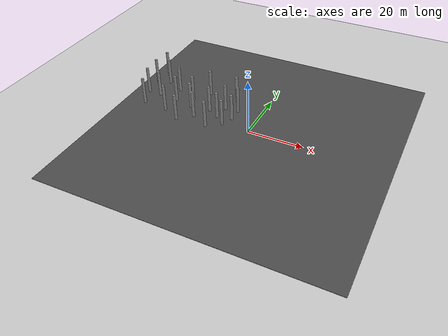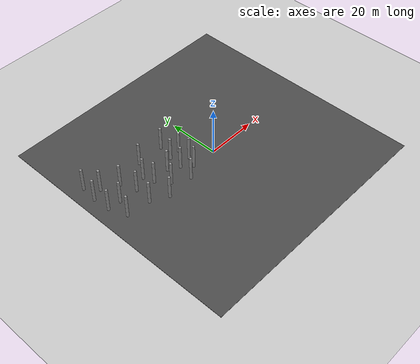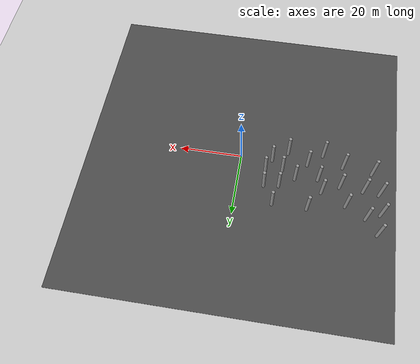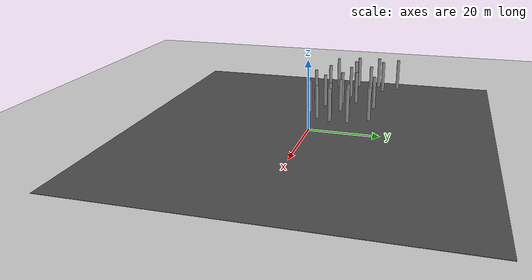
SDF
<sdf version="1.6">
 <world name="default">
  <model name="ground_plane">
   <static>1</static>
   <link name="link">
    <collision name="collision">
     <geometry><plane><normal>0 0 1</normal><size>100 100</size></plane></geometry>
     <surface><friction><ode><mu>100</mu><mu2>50</mu2></ode></friction></surface>
    </collision>
    <visual name="visual">
     <cast_shadows>0</cast_shadows>
     <geometry><plane><normal>0 0 1</normal><size>100 100</size></plane></geometry>
     <material>
      <script><uri>file://media/materials/scripts/gazebo.material</uri><name>Gazebo/Grey</name></script>
     </material>
    </visual>
   </link>
  </model>
  <model name="asphalt_plane">
   <static>1</static>
   <link name="link">
    <collision name="collision"><geometry><box><size>100 100 0.1</size></box></geometry></collision>
    <visual name="visual">
     <cast_shadows>0</cast_shadows>
     <geometry><box><size>100 100 0.1</size></box></geometry>
     <material>
      <script>
       <uri>model://asphalt_plane/materials/scripts</uri>
       <uri>model://asphalt_plane/materials/textures</uri>
       <name>vrc/asphalt</name>
      </script>
     </material>
    </visual>
   </link>
   <pose>0.078502 0.417861 0 0 -0 0</pose>
  </model>
  <model name="forest">
   <link name="link_clone_12">
    <pose>-8.00475 10.3672 0 0 -0 0</pose>
    <inertial>
     <mass>1000</mass>
     <inertia><ixx>0.145833</ixx><ixy>0</ixy><ixz>0</ixz><iyy>0.145833</iyy><iyz>0</iyz><izz>0.125</izz></inertia>
     <pose>0 0 5 0 -0 0</pose>
    </inertial>
    <visual name="visual">
     <geometry><cylinder><radius>0.5</radius><length>10</length></cylinder></geometry>
     <material>
      <script><name>Gazebo/Grey</name><uri>file://media/materials/scripts/gazebo.material</uri></script>
      <ambient>0.3 0.3 0.3 1</ambient>
      <diffuse>0.7 0.7 0.7 1</diffuse>
      <specular>0.01 0.01 0.01 1</specular>
      <emissive>0 0 0 1</emissive>
      <shader type="vertex"><normal_map>__default__</normal_map></shader>
     </material>
     <pose>0 0 5 0 -0 0</pose>
    </visual>
    <collision name="collision">
     <pose>0 0 5 0 -0 0</pose>
     <geometry><cylinder><radius>0.5</radius><length>10</length></cylinder></geometry>
     <surface>
      <friction>
       <ode><mu>1</mu><mu2>1</mu2><fdir1>0 0 0</fdir1><slip1>0</slip1><slip2>0</slip2></ode>
       <torsional>
        <coefficient>1</coefficient>
        <patch_radius>0</patch_radius>
        <surface_radius>0</surface_radius>
        <use_patch_radius>1</use_patch_radius>
        <ode><slip>0</slip></ode>
       </torsional>
      </friction>
      <bounce><restitution_coefficient>0</restitution_coefficient><threshold>1e+06</threshold></bounce>
      <contact>
       <collide_without_contact>0</collide_without_contact>
       <collide_without_contact_bitmask>1</collide_without_contact_bitmask>
       <collide_bitmask>1</collide_bitmask>
       <ode>
        <soft_cfm>0</soft_cfm>
        <soft_erp>0.2</soft_erp>
        <kp>1e+13</kp>
        <kd>1</kd>
        <max_vel>0.01</max_vel>
        <min_depth>0</min_depth>
       </ode>
       <bullet>
        <split_impulse>1</split_impulse>
        <split_impulse_penetration_threshold>-0.01</split_impulse_penetration_threshold>
        <soft_cfm>0</soft_cfm>
        <soft_erp>0.2</soft_erp>
        <kp>1e+13</kp>
        <kd>1</kd>
       </bullet>
      </contact>
     </surface>
    </collision>
   </link>
   <link name="link_clone_13_clone_1">
    <pose>-11.3149 16.1921 0 0 -0 0</pose>
    <inertial>
     <mass>1000</mass>
     <inertia><ixx>0.145833</ixx><ixy>0</ixy><ixz>0</ixz><iyy>0.145833</iyy><iyz>0</iyz><izz>0.125</izz></inertia>
     <pose>0 0 5 0 -0 0</pose>
    </inertial>
    <visual name="visual">
     <geometry><cylinder><radius>0.5</radius><length>10</length></cylinder></geometry>
     <material>
      <script><name>Gazebo/Grey</name><uri>file://media/materials/scripts/gazebo.material</uri></script>
      <ambient>0.3 0.3 0.3 1</ambient>
      <diffuse>0.7 0.7 0.7 1</diffuse>
      <specular>0.01 0.01 0.01 1</specular>
      <emissive>0 0 0 1</emissive>
      <shader type="vertex"><normal_map>__default__</normal_map></shader>
     </material>
     <pose>0 0 5 0 -0 0</pose>
    </visual>
    <collision name="collision">
     <pose>0 0 5 0 -0 0</pose>
     <geometry><cylinder><radius>0.5</radius><length>10</length></cylinder></geometry>
     <surface>
      <friction>
       <ode><mu>1</mu><mu2>1</mu2><fdir1>0 0 0</fdir1><slip1>0</slip1><slip2>0</slip2></ode>
       <torsional>
        <coefficient>1</coefficient>
        <patch_radius>0</patch_radius>
        <surface_radius>0</surface_radius>
        <use_patch_radius>1</use_patch_radius>
        <ode><slip>0</slip></ode>
       </torsional>
      </friction>
      <bounce><restitution_coefficient>0</restitution_coefficient><threshold>1e+06</threshold></bounce>
      <contact>
       <collide_without_contact>0</collide_without_contact>
       <collide_without_contact_bitmask>1</collide_without_contact_bitmask>
       <collide_bitmask>1</collide_bitmask>
       <ode>
        <soft_cfm>0</soft_cfm>
        <soft_erp>0.2</soft_erp>
        <kp>1e+13</kp>
        <kd>1</kd>
        <max_vel>0.01</max_vel>
        <min_depth>0</min_depth>
       </ode>
       <bullet>
        <split_impulse>1</split_impulse>
        <split_impulse_penetration_threshold>-0.01</split_impulse_penetration_threshold>
        <soft_cfm>0</soft_cfm>
        <soft_erp>0.2</soft_erp>
        <kp>1e+13</kp>
        <kd>1</kd>
       </bullet>
      </contact>
     </surface>
    </collision>
   </link>
   <link name="link_clone_13_clone_13">
    <pose>-22.1309 16.18 0 0 -0 0</pose>
    <inertial>
     <mass>1000</mass>
     <inertia><ixx>0.145833</ixx><ixy>0</ixy><ixz>0</ixz><iyy>0.145833</iyy><iyz>0</iyz><izz>0.125</izz></inertia>
     <pose>0 0 5 0 -0 0</pose>
    </inertial>
    <visual name="visual">
     <geometry><cylinder><radius>0.5</radius><length>10</length></cylinder></geometry>
     <material>
      <script><name>Gazebo/Grey</name><uri>file://media/materials/scripts/gazebo.material</uri></script>
      <ambient>0.3 0.3 0.3 1</ambient>
      <diffuse>0.7 0.7 0.7 1</diffuse>
      <specular>0.01 0.01 0.01 1</specular>
      <emissive>0 0 0 1</emissive>
      <shader type="vertex"><normal_map>__default__</normal_map></shader>
     </material>
     <pose>0 0 5 0 -0 0</pose>
    </visual>
    <collision name="collision">
     <pose>0 0 5 0 -0 0</pose>
     <geometry><cylinder><radius>0.5</radius><length>10</length></cylinder></geometry>
     <surface>
      <friction>
       <ode><mu>1</mu><mu2>1</mu2><fdir1>0 0 0</fdir1><slip1>0</slip1><slip2>0</slip2></ode>
       <torsional>
        <coefficient>1</coefficient>
        <patch_radius>0</patch_radius>
        <surface_radius>0</surface_radius>
        <use_patch_radius>1</use_patch_radius>
        <ode><slip>0</slip></ode>
       </torsional>
      </friction>
      <bounce><restitution_coefficient>0</restitution_coefficient><threshold>1e+06</threshold></bounce>
      <contact>
       <collide_without_contact>0</collide_without_contact>
       <collide_without_contact_bitmask>1</collide_without_contact_bitmask>
       <collide_bitmask>1</collide_bitmask>
       <ode>
        <soft_cfm>0</soft_cfm>
        <soft_erp>0.2</soft_erp>
        <kp>1e+13</kp>
        <kd>1</kd>
        <max_vel>0.01</max_vel>
        <min_depth>0</min_depth>
       </ode>
       <bullet>
        <split_impulse>1</split_impulse>
        <split_impulse_penetration_threshold>-0.01</split_impulse_penetration_threshold>
        <soft_cfm>0</soft_cfm>
        <soft_erp>0.2</soft_erp>
        <kp>1e+13</kp>
        <kd>1</kd>
       </bullet>
      </contact>
     </surface>
    </collision>
   </link>
   <link name="link_clone_13_clone_14">
    <pose>-26.1252 10.0023 0 0 -0 0</pose>
    <inertial>
     <mass>1000</mass>
     <inertia><ixx>0.145833</ixx><ixy>0</ixy><ixz>0</ixz><iyy>0.145833</iyy><iyz>0</iyz><izz>0.125</izz></inertia>
     <pose>0 0 5 0 -0 0</pose>
    </inertial>
    <visual name="visual">
     <geometry><cylinder><radius>0.5</radius><length>10</length></cylinder></geometry>
     <material>
      <script><name>Gazebo/Grey</name><uri>file://media/materials/scripts/gazebo.material</uri></script>
      <ambient>0.3 0.3 0.3 1</ambient>
      <diffuse>0.7 0.7 0.7 1</diffuse>
      <specular>0.01 0.01 0.01 1</specular>
      <emissive>0 0 0 1</emissive>
      <shader type="vertex"><normal_map>__default__</normal_map></shader>
     </material>
     <pose>0 0 5 0 -0 0</pose>
    </visual>
    <collision name="collision">
     <pose>0 0 5 0 -0 0</pose>
     <geometry><cylinder><radius>0.5</radius><length>10</length></cylinder></geometry>
     <surface>
      <friction>
       <ode><mu>1</mu><mu2>1</mu2><fdir1>0 0 0</fdir1><slip1>0</slip1><slip2>0</slip2></ode>
       <torsional>
        <coefficient>1</coefficient>
        <patch_radius>0</patch_radius>
        <surface_radius>0</surface_radius>
        <use_patch_radius>1</use_patch_radius>
        <ode><slip>0</slip></ode>
       </torsional>
      </friction>
      <bounce><restitution_coefficient>0</restitution_coefficient><threshold>1e+06</threshold></bounce>
      <contact>
       <collide_without_contact>0</collide_without_contact>
       <collide_without_contact_bitmask>1</collide_without_contact_bitmask>
       <collide_bitmask>1</collide_bitmask>
       <ode>
        <soft_cfm>0</soft_cfm>
        <soft_erp>0.2</soft_erp>
        <kp>1e+13</kp>
        <kd>1</kd>
        <max_vel>0.01</max_vel>
        <min_depth>0</min_depth>
       </ode>
       <bullet>
        <split_impulse>1</split_impulse>
        <split_impulse_penetration_threshold>-0.01</split_impulse_penetration_threshold>
        <soft_cfm>0</soft_cfm>
        <soft_erp>0.2</soft_erp>
        <kp>1e+13</kp>
        <kd>1</kd>
       </bullet>
      </contact>
     </surface>
    </collision>
   </link>
   <link name="link_clone_13_clone_15">
    <pose>-24.7315 5.80433 0 0 -0 0</pose>
    <inertial>
     <mass>1000</mass>
     <inertia><ixx>0.145833</ixx><ixy>0</ixy><ixz>0</ixz><iyy>0.145833</iyy><iyz>0</iyz><izz>0.125</izz></inertia>
     <pose>0 0 5 0 -0 0</pose>
    </inertial>
    <visual name="visual">
     <geometry><cylinder><radius>0.5</radius><length>10</length></cylinder></geometry>
     <material>
      <script><name>Gazebo/Grey</name><uri>file://media/materials/scripts/gazebo.material</uri></script>
      <ambient>0.3 0.3 0.3 1</ambient>
      <diffuse>0.7 0.7 0.7 1</diffuse>
      <specular>0.01 0.01 0.01 1</specular>
      <emissive>0 0 0 1</emissive>
      <shader type="vertex"><normal_map>__default__</normal_map></shader>
     </material>
     <pose>0 0 5 0 -0 0</pose>
    </visual>
    <collision name="collision">
     <pose>0 0 5 0 -0 0</pose>
     <geometry><cylinder><radius>0.5</radius><length>10</length></cylinder></geometry>
     <surface>
      <friction>
       <ode><mu>1</mu><mu2>1</mu2><fdir1>0 0 0</fdir1><slip1>0</slip1><slip2>0</slip2></ode>
       <torsional>
        <coefficient>1</coefficient>
        <patch_radius>0</patch_radius>
        <surface_radius>0</surface_radius>
        <use_patch_radius>1</use_patch_radius>
        <ode><slip>0</slip></ode>
       </torsional>
      </friction>
      <bounce><restitution_coefficient>0</restitution_coefficient><threshold>1e+06</threshold></bounce>
      <contact>
       <collide_without_contact>0</collide_without_contact>
       <collide_without_contact_bitmask>1</collide_without_contact_bitmask>
       <collide_bitmask>1</collide_bitmask>
       <ode>
        <soft_cfm>0</soft_cfm>
        <soft_erp>0.2</soft_erp>
        <kp>1e+13</kp>
        <kd>1</kd>
        <max_vel>0.01</max_vel>
        <min_depth>0</min_depth>
       </ode>
       <bullet>
        <split_impulse>1</split_impulse>
        <split_impulse_penetration_threshold>-0.01</split_impulse_penetration_threshold>
        <soft_cfm>0</soft_cfm>
        <soft_erp>0.2</soft_erp>
        <kp>1e+13</kp>
        <kd>1</kd>
       </bullet>
      </contact>
     </surface>
    </collision>
   </link>
   <link name="link_clone_13_clone_16">
    <pose>-25.7222 -2.93732 0 0 -0 0</pose>
    <inertial>
     <mass>1000</mass>
     <inertia><ixx>0.145833</ixx><ixy>0</ixy><ixz>0</ixz><iyy>0.145833</iyy><iyz>0</iyz><izz>0.125</izz></inertia>
     <pose>0 0 5 0 -0 0</pose>
    </inertial>
    <visual name="visual">
     <geometry><cylinder><radius>0.5</radius><length>10</length></cylinder></geometry>
     <material>
      <script><name>Gazebo/Grey</name><uri>file://media/materials/scripts/gazebo.material</uri></script>
      <ambient>0.3 0.3 0.3 1</ambient>
      <diffuse>0.7 0.7 0.7 1</diffuse>
      <specular>0.01 0.01 0.01 1</specular>
      <emissive>0 0 0 1</emissive>
      <shader type="vertex"><normal_map>__default__</normal_map></shader>
     </material>
     <pose>0 0 5 0 -0 0</pose>
    </visual>
    <collision name="collision">
     <pose>0 0 5 0 -0 0</pose>
     <geometry><cylinder><radius>0.5</radius><length>10</length></cylinder></geometry>
     <surface>
      <friction>
       <ode><mu>1</mu><mu2>1</mu2><fdir1>0 0 0</fdir1><slip1>0</slip1><slip2>0</slip2></ode>
       <torsional>
        <coefficient>1</coefficient>
        <patch_radius>0</patch_radius>
        <surface_radius>0</surface_radius>
        <use_patch_radius>1</use_patch_radius>
        <ode><slip>0</slip></ode>
       </torsional>
      </friction>
      <bounce><restitution_coefficient>0</restitution_coefficient><threshold>1e+06</threshold></bounce>
      <contact>
       <collide_without_contact>0</collide_without_contact>
       <collide_without_contact_bitmask>1</collide_without_contact_bitmask>
       <collide_bitmask>1</collide_bitmask>
       <ode>
        <soft_cfm>0</soft_cfm>
        <soft_erp>0.2</soft_erp>
        <kp>1e+13</kp>
        <kd>1</kd>
        <max_vel>0.01</max_vel>
        <min_depth>0</min_depth>
       </ode>
       <bullet>
        <split_impulse>1</split_impulse>
        <split_impulse_penetration_threshold>-0.01</split_impulse_penetration_threshold>
        <soft_cfm>0</soft_cfm>
        <soft_erp>0.2</soft_erp>
        <kp>1e+13</kp>
        <kd>1</kd>
       </bullet>
      </contact>
     </surface>
    </collision>
   </link>
   <link name="link_clone_13_clone_29">
    <pose>-20.9755 1.09889 0 0 -0 0</pose>
    <inertial>
     <mass>1000</mass>
     <inertia><ixx>0.145833</ixx><ixy>0</ixy><ixz>0</ixz><iyy>0.145833</iyy><iyz>0</iyz><izz>0.125</izz></inertia>
     <pose>0 0 5 0 -0 0</pose>
    </inertial>
    <visual name="visual">
     <geometry><cylinder><radius>0.5</radius><length>10</length></cylinder></geometry>
     <material>
      <script><name>Gazebo/Grey</name><uri>file://media/materials/scripts/gazebo.material</uri></script>
      <ambient>0.3 0.3 0.3 1</ambient>
      <diffuse>0.7 0.7 0.7 1</diffuse>
      <specular>0.01 0.01 0.01 1</specular>
      <emissive>0 0 0 1</emissive>
      <shader type="vertex"><normal_map>__default__</normal_map></shader>
     </material>
     <pose>0 0 5 0 -0 0</pose>
    </visual>
    <collision name="collision">
     <pose>0 0 5 0 -0 0</pose>
     <geometry><cylinder><radius>0.5</radius><length>10</length></cylinder></geometry>
     <surface>
      <friction>
       <ode><mu>1</mu><mu2>1</mu2><fdir1>0 0 0</fdir1><slip1>0</slip1><slip2>0</slip2></ode>
       <torsional>
        <coefficient>1</coefficient>
        <patch_radius>0</patch_radius>
        <surface_radius>0</surface_radius>
        <use_patch_radius>1</use_patch_radius>
        <ode><slip>0</slip></ode>
       </torsional>
      </friction>
      <bounce><restitution_coefficient>0</restitution_coefficient><threshold>1e+06</threshold></bounce>
      <contact>
       <collide_without_contact>0</collide_without_contact>
       <collide_without_contact_bitmask>1</collide_without_contact_bitmask>
       <collide_bitmask>1</collide_bitmask>
       <ode>
        <soft_cfm>0</soft_cfm>
        <soft_erp>0.2</soft_erp>
        <kp>1e+13</kp>
        <kd>1</kd>
        <max_vel>0.01</max_vel>
        <min_depth>0</min_depth>
       </ode>
       <bullet>
        <split_impulse>1</split_impulse>
        <split_impulse_penetration_threshold>-0.01</split_impulse_penetration_threshold>
        <soft_cfm>0</soft_cfm>
        <soft_erp>0.2</soft_erp>
        <kp>1e+13</kp>
        <kd>1</kd>
       </bullet>
      </contact>
     </surface>
    </collision>
   </link>
   <link name="link_clone_13_clone_4">
    <pose>-17.4766 6.59228 0 0 -0 0</pose>
    <inertial>
     <mass>1000</mass>
     <inertia><ixx>0.145833</ixx><ixy>0</ixy><ixz>0</ixz><iyy>0.145833</iyy><iyz>0</iyz><izz>0.125</izz></inertia>
     <pose>0 0 5 0 -0 0</pose>
    </inertial>
    <visual name="visual">
     <geometry><cylinder><radius>0.5</radius><length>10</length></cylinder></geometry>
     <material>
      <script><name>Gazebo/Grey</name><uri>file://media/materials/scripts/gazebo.material</uri></script>
      <ambient>0.3 0.3 0.3 1</ambient>
      <diffuse>0.7 0.7 0.7 1</diffuse>
      <specular>0.01 0.01 0.01 1</specular>
      <emissive>0 0 0 1</emissive>
      <shader type="vertex"><normal_map>__default__</normal_map></shader>
     </material>
     <pose>0 0 5 0 -0 0</pose>
    </visual>
    <collision name="collision">
     <pose>0 0 5 0 -0 0</pose>
     <geometry><cylinder><radius>0.5</radius><length>10</length></cylinder></geometry>
     <surface>
      <friction>
       <ode><mu>1</mu><mu2>1</mu2><fdir1>0 0 0</fdir1><slip1>0</slip1><slip2>0</slip2></ode>
       <torsional>
        <coefficient>1</coefficient>
        <patch_radius>0</patch_radius>
        <surface_radius>0</surface_radius>
        <use_patch_radius>1</use_patch_radius>
        <ode><slip>0</slip></ode>
       </torsional>
      </friction>
      <bounce><restitution_coefficient>0</restitution_coefficient><threshold>1e+06</threshold></bounce>
      <contact>
       <collide_without_contact>0</collide_without_contact>
       <collide_without_contact_bitmask>1</collide_without_contact_bitmask>
       <collide_bitmask>1</collide_bitmask>
       <ode>
        <soft_cfm>0</soft_cfm>
        <soft_erp>0.2</soft_erp>
        <kp>1e+13</kp>
        <kd>1</kd>
        <max_vel>0.01</max_vel>
        <min_depth>0</min_depth>
       </ode>
       <bullet>
        <split_impulse>1</split_impulse>
        <split_impulse_penetration_threshold>-0.01</split_impulse_penetration_threshold>
        <soft_cfm>0</soft_cfm>
        <soft_erp>0.2</soft_erp>
        <kp>1e+13</kp>
        <kd>1</kd>
       </bullet>
      </contact>
     </surface>
    </collision>
   </link>
   <link name="link_clone_13_clone_60">
    <pose>-43.8174 21.4004 0 0 -0 0</pose>
    <inertial>
     <mass>1000</mass>
     <inertia><ixx>0.145833</ixx><ixy>0</ixy><ixz>0</ixz><iyy>0.145833</iyy><iyz>0</iyz><izz>0.125</izz></inertia>
     <pose>0 0 5 0 -0 0</pose>
    </inertial>
    <visual name="visual">
     <geometry><cylinder><radius>0.5</radius><length>10</length></cylinder></geometry>
     <material>
      <script><name>Gazebo/Grey</name><uri>file://media/materials/scripts/gazebo.material</uri></script>
      <ambient>0.3 0.3 0.3 1</ambient>
      <diffuse>0.7 0.7 0.7 1</diffuse>
      <specular>0.01 0.01 0.01 1</specular>
      <emissive>0 0 0 1</emissive>
      <shader type="vertex"><normal_map>__default__</normal_map></shader>
     </material>
     <pose>0 0 5 0 -0 0</pose>
    </visual>
    <collision name="collision">
     <pose>0 0 5 0 -0 0</pose>
     <geometry><cylinder><radius>0.5</radius><length>10</length></cylinder></geometry>
     <surface>
      <friction>
       <ode><mu>1</mu><mu2>1</mu2><fdir1>0 0 0</fdir1><slip1>0</slip1><slip2>0</slip2></ode>
       <torsional>
        <coefficient>1</coefficient>
        <patch_radius>0</patch_radius>
        <surface_radius>0</surface_radius>
        <use_patch_radius>1</use_patch_radius>
        <ode><slip>0</slip></ode>
       </torsional>
      </friction>
      <bounce><restitution_coefficient>0</restitution_coefficient><threshold>1e+06</threshold></bounce>
      <contact>
       <collide_without_contact>0</collide_without_contact>
       <collide_without_contact_bitmask>1</collide_without_contact_bitmask>
       <collide_bitmask>1</collide_bitmask>
       <ode>
        <soft_cfm>0</soft_cfm>
        <soft_erp>0.2</soft_erp>
        <kp>1e+13</kp>
        <kd>1</kd>
        <max_vel>0.01</max_vel>
        <min_depth>0</min_depth>
       </ode>
       <bullet>
        <split_impulse>1</split_impulse>
        <split_impulse_penetration_threshold>-0.01</split_impulse_penetration_threshold>
        <soft_cfm>0</soft_cfm>
        <soft_erp>0.2</soft_erp>
        <kp>1e+13</kp>
        <kd>1</kd>
       </bullet>
      </contact>
     </surface>
    </collision>
   </link>
   <link name="link_clone_13_clone_63">
    <pose>-33.8023 13.5572 0 0 -0 0</pose>
    <inertial>
     <mass>1000</mass>
     <inertia><ixx>0.145833</ixx><ixy>0</ixy><ixz>0</ixz><iyy>0.145833</iyy><iyz>0</iyz><izz>0.125</izz></inertia>
     <pose>0 0 5 0 -0 0</pose>
    </inertial>
    <visual name="visual">
     <geometry><cylinder><radius>0.5</radius><length>10</length></cylinder></geometry>
     <material>
      <script><name>Gazebo/Grey</name><uri>file://media/materials/scripts/gazebo.material</uri></script>
      <ambient>0.3 0.3 0.3 1</ambient>
      <diffuse>0.7 0.7 0.7 1</diffuse>
      <specular>0.01 0.01 0.01 1</specular>
      <emissive>0 0 0 1</emissive>
      <shader type="vertex"><normal_map>__default__</normal_map></shader>
     </material>
     <pose>0 0 5 0 -0 0</pose>
    </visual>
    <collision name="collision">
     <pose>0 0 5 0 -0 0</pose>
     <geometry><cylinder><radius>0.5</radius><length>10</length></cylinder></geometry>
     <surface>
      <friction>
       <ode><mu>1</mu><mu2>1</mu2><fdir1>0 0 0</fdir1><slip1>0</slip1><slip2>0</slip2></ode>
       <torsional>
        <coefficient>1</coefficient>
        <patch_radius>0</patch_radius>
        <surface_radius>0</surface_radius>
        <use_patch_radius>1</use_patch_radius>
        <ode><slip>0</slip></ode>
       </torsional>
      </friction>
      <bounce><restitution_coefficient>0</restitution_coefficient><threshold>1e+06</threshold></bounce>
      <contact>
       <collide_without_contact>0</collide_without_contact>
       <collide_without_contact_bitmask>1</collide_without_contact_bitmask>
       <collide_bitmask>1</collide_bitmask>
       <ode>
        <soft_cfm>0</soft_cfm>
        <soft_erp>0.2</soft_erp>
        <kp>1e+13</kp>
        <kd>1</kd>
        <max_vel>0.01</max_vel>
        <min_depth>0</min_depth>
       </ode>
       <bullet>
        <split_impulse>1</split_impulse>
        <split_impulse_penetration_threshold>-0.01</split_impulse_penetration_threshold>
        <soft_cfm>0</soft_cfm>
        <soft_erp>0.2</soft_erp>
        <kp>1e+13</kp>
        <kd>1</kd>
       </bullet>
      </contact>
     </surface>
    </collision>
   </link>
   <link name="link_clone_13_clone_64">
    <pose>-40.1258 16.7835 0 0 -0 0</pose>
    <inertial>
     <mass>1000</mass>
     <inertia><ixx>0.145833</ixx><ixy>0</ixy><ixz>0</ixz><iyy>0.145833</iyy><iyz>0</iyz><izz>0.125</izz></inertia>
     <pose>0 0 5 0 -0 0</pose>
    </inertial>
    <visual name="visual">
     <geometry><cylinder><radius>0.5</radius><length>10</length></cylinder></geometry>
     <material>
      <script><name>Gazebo/Grey</name><uri>file://media/materials/scripts/gazebo.material</uri></script>
      <ambient>0.3 0.3 0.3 1</ambient>
      <diffuse>0.7 0.7 0.7 1</diffuse>
      <specular>0.01 0.01 0.01 1</specular>
      <emissive>0 0 0 1</emissive>
      <shader type="vertex"><normal_map>__default__</normal_map></shader>
     </material>
     <pose>0 0 5 0 -0 0</pose>
    </visual>
    <collision name="collision">
     <pose>0 0 5 0 -0 0</pose>
     <geometry><cylinder><radius>0.5</radius><length>10</length></cylinder></geometry>
     <surface>
      <friction>
       <ode><mu>1</mu><mu2>1</mu2><fdir1>0 0 0</fdir1><slip1>0</slip1><slip2>0</slip2></ode>
       <torsional>
        <coefficient>1</coefficient>
        <patch_radius>0</patch_radius>
        <surface_radius>0</surface_radius>
        <use_patch_radius>1</use_patch_radius>
        <ode><slip>0</slip></ode>
       </torsional>
      </friction>
      <bounce><restitution_coefficient>0</restitution_coefficient><threshold>1e+06</threshold></bounce>
      <contact>
       <collide_without_contact>0</collide_without_contact>
       <collide_without_contact_bitmask>1</collide_without_contact_bitmask>
       <collide_bitmask>1</collide_bitmask>
       <ode>
        <soft_cfm>0</soft_cfm>
        <soft_erp>0.2</soft_erp>
        <kp>1e+13</kp>
        <kd>1</kd>
        <max_vel>0.01</max_vel>
        <min_depth>0</min_depth>
       </ode>
       <bullet>
        <split_impulse>1</split_impulse>
        <split_impulse_penetration_threshold>-0.01</split_impulse_penetration_threshold>
        <soft_cfm>0</soft_cfm>
        <soft_erp>0.2</soft_erp>
        <kp>1e+13</kp>
        <kd>1</kd>
       </bullet>
      </contact>
     </surface>
    </collision>
   </link>
   <link name="link_clone_13_clone_65">
    <pose>-44.5718 14.901 0 0 -0 0</pose>
    <inertial>
     <mass>1000</mass>
     <inertia><ixx>0.145833</ixx><ixy>0</ixy><ixz>0</ixz><iyy>0.145833</iyy><iyz>0</iyz><izz>0.125</izz></inertia>
     <pose>0 0 5 0 -0 0</pose>
    </inertial>
    <visual name="visual">
     <geometry><cylinder><radius>0.5</radius><length>10</length></cylinder></geometry>
     <material>
      <script><name>Gazebo/Grey</name><uri>file://media/materials/scripts/gazebo.material</uri></script>
      <ambient>0.3 0.3 0.3 1</ambient>
      <diffuse>0.7 0.7 0.7 1</diffuse>
      <specular>0.01 0.01 0.01 1</specular>
      <emissive>0 0 0 1</emissive>
      <shader type="vertex"><normal_map>__default__</normal_map></shader>
     </material>
     <pose>0 0 5 0 -0 0</pose>
    </visual>
    <collision name="collision">
     <pose>0 0 5 0 -0 0</pose>
     <geometry><cylinder><radius>0.5</radius><length>10</length></cylinder></geometry>
     <surface>
      <friction>
       <ode><mu>1</mu><mu2>1</mu2><fdir1>0 0 0</fdir1><slip1>0</slip1><slip2>0</slip2></ode>
       <torsional>
        <coefficient>1</coefficient>
        <patch_radius>0</patch_radius>
        <surface_radius>0</surface_radius>
        <use_patch_radius>1</use_patch_radius>
        <ode><slip>0</slip></ode>
       </torsional>
      </friction>
      <bounce><restitution_coefficient>0</restitution_coefficient><threshold>1e+06</threshold></bounce>
      <contact>
       <collide_without_contact>0</collide_without_contact>
       <collide_without_contact_bitmask>1</collide_without_contact_bitmask>
       <collide_bitmask>1</collide_bitmask>
       <ode>
        <soft_cfm>0</soft_cfm>
        <soft_erp>0.2</soft_erp>
        <kp>1e+13</kp>
        <kd>1</kd>
        <max_vel>0.01</max_vel>
        <min_depth>0</min_depth>
       </ode>
       <bullet>
        <split_impulse>1</split_impulse>
        <split_impulse_penetration_threshold>-0.01</split_impulse_penetration_threshold>
        <soft_cfm>0</soft_cfm>
        <soft_erp>0.2</soft_erp>
        <kp>1e+13</kp>
        <kd>1</kd>
       </bullet>
      </contact>
     </surface>
    </collision>
   </link>
   <link name="link_clone_13_clone_66">
    <pose>-44.0592 8.21099 0 0 -0 0</pose>
    <inertial>
     <mass>1000</mass>
     <inertia><ixx>0.145833</ixx><ixy>0</ixy><ixz>0</ixz><iyy>0.145833</iyy><iyz>0</iyz><izz>0.125</izz></inertia>
     <pose>0 0 5 0 -0 0</pose>
    </inertial>
    <visual name="visual">
     <geometry><cylinder><radius>0.5</radius><length>10</length></cylinder></geometry>
     <material>
      <script><name>Gazebo/Grey</name><uri>file://media/materials/scripts/gazebo.material</uri></script>
      <ambient>0.3 0.3 0.3 1</ambient>
      <diffuse>0.7 0.7 0.7 1</diffuse>
      <specular>0.01 0.01 0.01 1</specular>
      <emissive>0 0 0 1</emissive>
      <shader type="vertex"><normal_map>__default__</normal_map></shader>
     </material>
     <pose>0 0 5 0 -0 0</pose>
    </visual>
    <collision name="collision">
     <pose>0 0 5 0 -0 0</pose>
     <geometry><cylinder><radius>0.5</radius><length>10</length></cylinder></geometry>
     <surface>
      <friction>
       <ode><mu>1</mu><mu2>1</mu2><fdir1>0 0 0</fdir1><slip1>0</slip1><slip2>0</slip2></ode>
       <torsional>
        <coefficient>1</coefficient>
        <patch_radius>0</patch_radius>
        <surface_radius>0</surface_radius>
        <use_patch_radius>1</use_patch_radius>
        <ode><slip>0</slip></ode>
       </torsional>
      </friction>
      <bounce><restitution_coefficient>0</restitution_coefficient><threshold>1e+06</threshold></bounce>
      <contact>
       <collide_without_contact>0</collide_without_contact>
       <collide_without_contact_bitmask>1</collide_without_contact_bitmask>
       <collide_bitmask>1</collide_bitmask>
       <ode>
        <soft_cfm>0</soft_cfm>
        <soft_erp>0.2</soft_erp>
        <kp>1e+13</kp>
        <kd>1</kd>
        <max_vel>0.01</max_vel>
        <min_depth>0</min_depth>
       </ode>
       <bullet>
        <split_impulse>1</split_impulse>
        <split_impulse_penetration_threshold>-0.01</split_impulse_penetration_threshold>
        <soft_cfm>0</soft_cfm>
        <soft_erp>0.2</soft_erp>
        <kp>1e+13</kp>
        <kd>1</kd>
       </bullet>
      </contact>
     </surface>
    </collision>
   </link>
   <link name="link_clone_13_clone_67">
    <pose>-39.043 7.81464 0 0 -0 0</pose>
    <inertial>
     <mass>1000</mass>
     <inertia><ixx>0.145833</ixx><ixy>0</ixy><ixz>0</ixz><iyy>0.145833</iyy><iyz>0</iyz><izz>0.125</izz></inertia>
     <pose>0 0 5 0 -0 0</pose>
    </inertial>
    <visual name="visual">
     <geometry><cylinder><radius>0.5</radius><length>10</length></cylinder></geometry>
     <material>
      <script><name>Gazebo/Grey</name><uri>file://media/materials/scripts/gazebo.material</uri></script>
      <ambient>0.3 0.3 0.3 1</ambient>
      <diffuse>0.7 0.7 0.7 1</diffuse>
      <specular>0.01 0.01 0.01 1</specular>
      <emissive>0 0 0 1</emissive>
      <shader type="vertex"><normal_map>__default__</normal_map></shader>
     </material>
     <pose>0 0 5 0 -0 0</pose>
    </visual>
    <collision name="collision">
     <pose>0 0 5 0 -0 0</pose>
     <geometry><cylinder><radius>0.5</radius><length>10</length></cylinder></geometry>
     <surface>
      <friction>
       <ode><mu>1</mu><mu2>1</mu2><fdir1>0 0 0</fdir1><slip1>0</slip1><slip2>0</slip2></ode>
       <torsional>
        <coefficient>1</coefficient>
        <patch_radius>0</patch_radius>
        <surface_radius>0</surface_radius>
        <use_patch_radius>1</use_patch_radius>
        <ode><slip>0</slip></ode>
       </torsional>
      </friction>
      <bounce><restitution_coefficient>0</restitution_coefficient><threshold>1e+06</threshold></bounce>
      <contact>
       <collide_without_contact>0</collide_without_contact>
       <collide_without_contact_bitmask>1</collide_without_contact_bitmask>
       <collide_bitmask>1</collide_bitmask>
       <ode>
        <soft_cfm>0</soft_cfm>
        <soft_erp>0.2</soft_erp>
        <kp>1e+13</kp>
        <kd>1</kd>
        <max_vel>0.01</max_vel>
        <min_depth>0</min_depth>
       </ode>
       <bullet>
        <split_impulse>1</split_impulse>
        <split_impulse_penetration_threshold>-0.01</split_impulse_penetration_threshold>
        <soft_cfm>0</soft_cfm>
        <soft_erp>0.2</soft_erp>
        <kp>1e+13</kp>
        <kd>1</kd>
       </bullet>
      </contact>
     </surface>
    </collision>
   </link>
   <link name="link_clone_13_clone_68">
    <pose>-31.6867 7.38173 0 0 -0 0</pose>
    <inertial>
     <mass>1000</mass>
     <inertia><ixx>0.145833</ixx><ixy>0</ixy><ixz>0</ixz><iyy>0.145833</iyy><iyz>0</iyz><izz>0.125</izz></inertia>
     <pose>0 0 5 0 -0 0</pose>
    </inertial>
    <visual name="visual">
     <geometry><cylinder><radius>0.5</radius><length>10</length></cylinder></geometry>
     <material>
      <script><name>Gazebo/Grey</name><uri>file://media/materials/scripts/gazebo.material</uri></script>
      <ambient>0.3 0.3 0.3 1</ambient>
      <diffuse>0.7 0.7 0.7 1</diffuse>
      <specular>0.01 0.01 0.01 1</specular>
      <emissive>0 0 0 1</emissive>
      <shader type="vertex"><normal_map>__default__</normal_map></shader>
     </material>
     <pose>0 0 5 0 -0 0</pose>
    </visual>
    <collision name="collision">
     <pose>0 0 5 0 -0 0</pose>
     <geometry><cylinder><radius>0.5</radius><length>10</length></cylinder></geometry>
     <surface>
      <friction>
       <ode><mu>1</mu><mu2>1</mu2><fdir1>0 0 0</fdir1><slip1>0</slip1><slip2>0</slip2></ode>
       <torsional>
        <coefficient>1</coefficient>
        <patch_radius>0</patch_radius>
        <surface_radius>0</surface_radius>
        <use_patch_radius>1</use_patch_radius>
        <ode><slip>0</slip></ode>
       </torsional>
      </friction>
      <bounce><restitution_coefficient>0</restitution_coefficient><threshold>1e+06</threshold></bounce>
      <contact>
       <collide_without_contact>0</collide_without_contact>
       <collide_without_contact_bitmask>1</collide_without_contact_bitmask>
       <collide_bitmask>1</collide_bitmask>
       <ode>
        <soft_cfm>0</soft_cfm>
        <soft_erp>0.2</soft_erp>
        <kp>1e+13</kp>
        <kd>1</kd>
        <max_vel>0.01</max_vel>
        <min_depth>0</min_depth>
       </ode>
       <bullet>
        <split_impulse>1</split_impulse>
        <split_impulse_penetration_threshold>-0.01</split_impulse_penetration_threshold>
        <soft_cfm>0</soft_cfm>
        <soft_erp>0.2</soft_erp>
        <kp>1e+13</kp>
        <kd>1</kd>
       </bullet>
      </contact>
     </surface>
    </collision>
   </link>
   <link name="link_clone_13_clone_69">
    <pose>-41.5476 1.37971 0 0 -0 0</pose>
    <inertial>
     <mass>1000</mass>
     <inertia><ixx>0.145833</ixx><ixy>0</ixy><ixz>0</ixz><iyy>0.145833</iyy><iyz>0</iyz><izz>0.125</izz></inertia>
     <pose>0 0 5 0 -0 0</pose>
    </inertial>
    <visual name="visual">
     <geometry><cylinder><radius>0.5</radius><length>10</length></cylinder></geometry>
     <material>
      <script><name>Gazebo/Grey</name><uri>file://media/materials/scripts/gazebo.material</uri></script>
      <ambient>0.3 0.3 0.3 1</ambient>
      <diffuse>0.7 0.7 0.7 1</diffuse>
      <specular>0.01 0.01 0.01 1</specular>
      <emissive>0 0 0 1</emissive>
      <shader type="vertex"><normal_map>__default__</normal_map></shader>
     </material>
     <pose>0 0 5 0 -0 0</pose>
    </visual>
    <collision name="collision">
     <pose>0 0 5 0 -0 0</pose>
     <geometry><cylinder><radius>0.5</radius><length>10</length></cylinder></geometry>
     <surface>
      <friction>
       <ode><mu>1</mu><mu2>1</mu2><fdir1>0 0 0</fdir1><slip1>0</slip1><slip2>0</slip2></ode>
       <torsional>
        <coefficient>1</coefficient>
        <patch_radius>0</patch_radius>
        <surface_radius>0</surface_radius>
        <use_patch_radius>1</use_patch_radius>
        <ode><slip>0</slip></ode>
       </torsional>
      </friction>
      <bounce><restitution_coefficient>0</restitution_coefficient><threshold>1e+06</threshold></bounce>
      <contact>
       <collide_without_contact>0</collide_without_contact>
       <collide_without_contact_bitmask>1</collide_without_contact_bitmask>
       <collide_bitmask>1</collide_bitmask>
       <ode>
        <soft_cfm>0</soft_cfm>
        <soft_erp>0.2</soft_erp>
        <kp>1e+13</kp>
        <kd>1</kd>
        <max_vel>0.01</max_vel>
        <min_depth>0</min_depth>
       </ode>
       <bullet>
        <split_impulse>1</split_impulse>
        <split_impulse_penetration_threshold>-0.01</split_impulse_penetration_threshold>
        <soft_cfm>0</soft_cfm>
        <soft_erp>0.2</soft_erp>
        <kp>1e+13</kp>
        <kd>1</kd>
       </bullet>
      </contact>
     </surface>
    </collision>
   </link>
   <link name="link_clone_13_clone_70">
    <pose>-32.2696 0.37679 0 0 -0 0</pose>
    <inertial>
     <mass>1000</mass>
     <inertia><ixx>0.145833</ixx><ixy>0</ixy><ixz>0</ixz><iyy>0.145833</iyy><iyz>0</iyz><izz>0.125</izz></inertia>
     <pose>0 0 5 0 -0 0</pose>
    </inertial>
    <visual name="visual">
     <geometry><cylinder><radius>0.5</radius><length>10</length></cylinder></geometry>
     <material>
      <script><name>Gazebo/Grey</name><uri>file://media/materials/scripts/gazebo.material</uri></script>
      <ambient>0.3 0.3 0.3 1</ambient>
      <diffuse>0.7 0.7 0.7 1</diffuse>
      <specular>0.01 0.01 0.01 1</specular>
      <emissive>0 0 0 1</emissive>
      <shader type="vertex"><normal_map>__default__</normal_map></shader>
     </material>
     <pose>0 0 5 0 -0 0</pose>
    </visual>
    <collision name="collision">
     <pose>0 0 5 0 -0 0</pose>
     <geometry><cylinder><radius>0.5</radius><length>10</length></cylinder></geometry>
     <surface>
      <friction>
       <ode><mu>1</mu><mu2>1</mu2><fdir1>0 0 0</fdir1><slip1>0</slip1><slip2>0</slip2></ode>
       <torsional>
        <coefficient>1</coefficient>
        <patch_radius>0</patch_radius>
        <surface_radius>0</surface_radius>
        <use_patch_radius>1</use_patch_radius>
        <ode><slip>0</slip></ode>
       </torsional>
      </friction>
      <bounce><restitution_coefficient>0</restitution_coefficient><threshold>1e+06</threshold></bounce>
      <contact>
       <collide_without_contact>0</collide_without_contact>
       <collide_without_contact_bitmask>1</collide_without_contact_bitmask>
       <collide_bitmask>1</collide_bitmask>
       <ode>
        <soft_cfm>0</soft_cfm>
        <soft_erp>0.2</soft_erp>
        <kp>1e+13</kp>
        <kd>1</kd>
        <max_vel>0.01</max_vel>
        <min_depth>0</min_depth>
       </ode>
       <bullet>
        <split_impulse>1</split_impulse>
        <split_impulse_penetration_threshold>-0.01</split_impulse_penetration_threshold>
        <soft_cfm>0</soft_cfm>
        <soft_erp>0.2</soft_erp>
        <kp>1e+13</kp>
        <kd>1</kd>
       </bullet>
      </contact>
     </surface>
    </collision>
   </link>
   <link name="link_clone_14">
    <pose>-12.6834 9.80433 0 0 -0 0</pose>
    <inertial>
     <mass>1000</mass>
     <inertia><ixx>0.145833</ixx><ixy>0</ixy><ixz>0</ixz><iyy>0.145833</iyy><iyz>0</iyz><izz>0.125</izz></inertia>
     <pose>0 0 5 0 -0 0</pose>
    </inertial>
    <visual name="visual">
     <geometry><cylinder><radius>0.5</radius><length>10</length></cylinder></geometry>
     <material>
      <script><name>Gazebo/Grey</name><uri>file://media/materials/scripts/gazebo.material</uri></script>
      <ambient>0.3 0.3 0.3 1</ambient>
      <diffuse>0.7 0.7 0.7 1</diffuse>
      <specular>0.01 0.01 0.01 1</specular>
      <emissive>0 0 0 1</emissive>
      <shader type="vertex"><normal_map>__default__</normal_map></shader>
     </material>
     <pose>0 0 5 0 -0 0</pose>
    </visual>
    <collision name="collision">
     <pose>0 0 5 0 -0 0</pose>
     <geometry><cylinder><radius>0.5</radius><length>10</length></cylinder></geometry>
     <surface>
      <friction>
       <ode><mu>1</mu><mu2>1</mu2><fdir1>0 0 0</fdir1><slip1>0</slip1><slip2>0</slip2></ode>
       <torsional>
        <coefficient>1</coefficient>
        <patch_radius>0</patch_radius>
        <surface_radius>0</surface_radius>
        <use_patch_radius>1</use_patch_radius>
        <ode><slip>0</slip></ode>
       </torsional>
      </friction>
      <bounce><restitution_coefficient>0</restitution_coefficient><threshold>1e+06</threshold></bounce>
      <contact>
       <collide_without_contact>0</collide_without_contact>
       <collide_without_contact_bitmask>1</collide_without_contact_bitmask>
       <collide_bitmask>1</collide_bitmask>
       <ode>
        <soft_cfm>0</soft_cfm>
        <soft_erp>0.2</soft_erp>
        <kp>1e+13</kp>
        <kd>1</kd>
        <max_vel>0.01</max_vel>
        <min_depth>0</min_depth>
       </ode>
       <bullet>
        <split_impulse>1</split_impulse>
        <split_impulse_penetration_threshold>-0.01</split_impulse_penetration_threshold>
        <soft_cfm>0</soft_cfm>
        <soft_erp>0.2</soft_erp>
        <kp>1e+13</kp>
        <kd>1</kd>
       </bullet>
      </contact>
     </surface>
    </collision>
   </link>
   <link name="link_clone_5">
    <pose>-7.8913 5.18434 0 0 -0 0</pose>
    <inertial>
     <mass>1000</mass>
     <inertia><ixx>0.145833</ixx><ixy>0</ixy><ixz>0</ixz><iyy>0.145833</iyy><iyz>0</iyz><izz>0.125</izz></inertia>
     <pose>0 0 5 0 -0 0</pose>
    </inertial>
    <visual name="visual">
     <geometry><cylinder><radius>0.5</radius><length>10</length></cylinder></geometry>
     <material>
      <script><name>Gazebo/Grey</name><uri>file://media/materials/scripts/gazebo.material</uri></script>
      <ambient>0.3 0.3 0.3 1</ambient>
      <diffuse>0.7 0.7 0.7 1</diffuse>
      <specular>0.01 0.01 0.01 1</specular>
      <emissive>0 0 0 1</emissive>
      <shader type="vertex"><normal_map>__default__</normal_map></shader>
     </material>
     <pose>0 0 5 0 -0 0</pose>
    </visual>
    <collision name="collision">
     <pose>0 0 5 0 -0 0</pose>
     <geometry><cylinder><radius>0.5</radius><length>10</length></cylinder></geometry>
     <surface>
      <friction>
       <ode><mu>1</mu><mu2>1</mu2><fdir1>0 0 0</fdir1><slip1>0</slip1><slip2>0</slip2></ode>
       <torsional>
        <coefficient>1</coefficient>
        <patch_radius>0</patch_radius>
        <surface_radius>0</surface_radius>
        <use_patch_radius>1</use_patch_radius>
        <ode><slip>0</slip></ode>
       </torsional>
      </friction>
      <bounce><restitution_coefficient>0</restitution_coefficient><threshold>1e+06</threshold></bounce>
      <contact>
       <collide_without_contact>0</collide_without_contact>
       <collide_without_contact_bitmask>1</collide_without_contact_bitmask>
       <collide_bitmask>1</collide_bitmask>
       <ode>
        <soft_cfm>0</soft_cfm>
        <soft_erp>0.2</soft_erp>
        <kp>1e+13</kp>
        <kd>1</kd>
        <max_vel>0.01</max_vel>
        <min_depth>0</min_depth>
       </ode>
       <bullet>
        <split_impulse>1</split_impulse>
        <split_impulse_penetration_threshold>-0.01</split_impulse_penetration_threshold>
        <soft_cfm>0</soft_cfm>
        <soft_erp>0.2</soft_erp>
        <kp>1e+13</kp>
        <kd>1</kd>
       </bullet>
      </contact>
     </surface>
    </collision>
   </link>
   <link name="link_clone_6">
    <pose>-9.66169 1.06965 0 0 -0 0</pose>
    <inertial>
     <mass>1000</mass>
     <inertia><ixx>0.145833</ixx><ixy>0</ixy><ixz>0</ixz><iyy>0.145833</iyy><iyz>0</iyz><izz>0.125</izz></inertia>
     <pose>0 0 5 0 -0 0</pose>
    </inertial>
    <visual name="visual">
     <geometry><cylinder><radius>0.5</radius><length>10</length></cylinder></geometry>
     <material>
      <script><name>Gazebo/Grey</name><uri>file://media/materials/scripts/gazebo.material</uri></script>
      <ambient>0.3 0.3 0.3 1</ambient>
      <diffuse>0.7 0.7 0.7 1</diffuse>
      <specular>0.01 0.01 0.01 1</specular>
      <emissive>0 0 0 1</emissive>
      <shader type="vertex"><normal_map>__default__</normal_map></shader>
     </material>
     <pose>0 0 5 0 -0 0</pose>
    </visual>
    <collision name="collision">
     <pose>0 0 5 0 -0 0</pose>
     <geometry><cylinder><radius>0.5</radius><length>10</length></cylinder></geometry>
     <surface>
      <friction>
       <ode><mu>1</mu><mu2>1</mu2><fdir1>0 0 0</fdir1><slip1>0</slip1><slip2>0</slip2></ode>
       <torsional>
        <coefficient>1</coefficient>
        <patch_radius>0</patch_radius>
        <surface_radius>0</surface_radius>
        <use_patch_radius>1</use_patch_radius>
        <ode><slip>0</slip></ode>
       </torsional>
      </friction>
      <bounce><restitution_coefficient>0</restitution_coefficient><threshold>1e+06</threshold></bounce>
      <contact>
       <collide_without_contact>0</collide_without_contact>
       <collide_without_contact_bitmask>1</collide_without_contact_bitmask>
       <collide_bitmask>1</collide_bitmask>
       <ode>
        <soft_cfm>0</soft_cfm>
        <soft_erp>0.2</soft_erp>
        <kp>1e+13</kp>
        <kd>1</kd>
        <max_vel>0.01</max_vel>
        <min_depth>0</min_depth>
       </ode>
       <bullet>
        <split_impulse>1</split_impulse>
        <split_impulse_penetration_threshold>-0.01</split_impulse_penetration_threshold>
        <soft_cfm>0</soft_cfm>
        <soft_erp>0.2</soft_erp>
        <kp>1e+13</kp>
        <kd>1</kd>
       </bullet>
      </contact>
     </surface>
    </collision>
   </link>
   <link name="link_clone_7">
    <pose>-13.2179 4.25923 0 0 -0 0</pose>
    <inertial>
     <mass>1000</mass>
     <inertia><ixx>0.145833</ixx><ixy>0</ixy><ixz>0</ixz><iyy>0.145833</iyy><iyz>0</iyz><izz>0.125</izz></inertia>
     <pose>0 0 5 0 -0 0</pose>
    </inertial>
    <visual name="visual">
     <geometry><cylinder><radius>0.5</radius><length>10</length></cylinder></geometry>
     <material>
      <script><name>Gazebo/Grey</name><uri>file://media/materials/scripts/gazebo.material</uri></script>
      <ambient>0.3 0.3 0.3 1</ambient>
      <diffuse>0.7 0.7 0.7 1</diffuse>
      <specular>0.01 0.01 0.01 1</specular>
      <emissive>0 0 0 1</emissive>
      <shader type="vertex"><normal_map>__default__</normal_map></shader>
     </material>
     <pose>0 0 5 0 -0 0</pose>
    </visual>
    <collision name="collision">
     <pose>0 0 5 0 -0 0</pose>
     <geometry><cylinder><radius>0.5</radius><length>10</length></cylinder></geometry>
     <surface>
      <friction>
       <ode><mu>1</mu><mu2>1</mu2><fdir1>0 0 0</fdir1><slip1>0</slip1><slip2>0</slip2></ode>
       <torsional>
        <coefficient>1</coefficient>
        <patch_radius>0</patch_radius>
        <surface_radius>0</surface_radius>
        <use_patch_radius>1</use_patch_radius>
        <ode><slip>0</slip></ode>
       </torsional>
      </friction>
      <bounce><restitution_coefficient>0</restitution_coefficient><threshold>1e+06</threshold></bounce>
      <contact>
       <collide_without_contact>0</collide_without_contact>
       <collide_without_contact_bitmask>1</collide_without_contact_bitmask>
       <collide_bitmask>1</collide_bitmask>
       <ode>
        <soft_cfm>0</soft_cfm>
        <soft_erp>0.2</soft_erp>
        <kp>1e+13</kp>
        <kd>1</kd>
        <max_vel>0.01</max_vel>
        <min_depth>0</min_depth>
       </ode>
       <bullet>
        <split_impulse>1</split_impulse>
        <split_impulse_penetration_threshold>-0.01</split_impulse_penetration_threshold>
        <soft_cfm>0</soft_cfm>
        <soft_erp>0.2</soft_erp>
        <kp>1e+13</kp>
        <kd>1</kd>
       </bullet>
      </contact>
     </surface>
    </collision>
   </link>
   <link name="link_clone_8">
    <pose>-14.4895 -2.21917 0 0 -0 0</pose>
    <inertial>
     <mass>1000</mass>
     <inertia><ixx>0.145833</ixx><ixy>0</ixy><ixz>0</ixz><iyy>0.145833</iyy><iyz>0</iyz><izz>0.125</izz></inertia>
     <pose>0 0 5 0 -0 0</pose>
    </inertial>
    <visual name="visual">
     <geometry><cylinder><radius>0.5</radius><length>10</length></cylinder></geometry>
     <material>
      <script><name>Gazebo/Grey</name><uri>file://media/materials/scripts/gazebo.material</uri></script>
      <ambient>0.3 0.3 0.3 1</ambient>
      <diffuse>0.7 0.7 0.7 1</diffuse>
      <specular>0.01 0.01 0.01 1</specular>
      <emissive>0 0 0 1</emissive>
      <shader type="vertex"><normal_map>__default__</normal_map></shader>
     </material>
     <pose>0 0 5 0 -0 0</pose>
    </visual>
    <collision name="collision">
     <pose>0 0 5 0 -0 0</pose>
     <geometry><cylinder><radius>0.5</radius><length>10</length></cylinder></geometry>
     <surface>
      <friction>
       <ode><mu>1</mu><mu2>1</mu2><fdir1>0 0 0</fdir1><slip1>0</slip1><slip2>0</slip2></ode>
       <torsional>
        <coefficient>1</coefficient>
        <patch_radius>0</patch_radius>
        <surface_radius>0</surface_radius>
        <use_patch_radius>1</use_patch_radius>
        <ode><slip>0</slip></ode>
       </torsional>
      </friction>
      <bounce><restitution_coefficient>0</restitution_coefficient><threshold>1e+06</threshold></bounce>
      <contact>
       <collide_without_contact>0</collide_without_contact>
       <collide_without_contact_bitmask>1</collide_without_contact_bitmask>
       <collide_bitmask>1</collide_bitmask>
       <ode>
        <soft_cfm>0</soft_cfm>
        <soft_erp>0.2</soft_erp>
        <kp>1e+13</kp>
        <kd>1</kd>
        <max_vel>0.01</max_vel>
        <min_depth>0</min_depth>
       </ode>
       <bullet>
        <split_impulse>1</split_impulse>
        <split_impulse_penetration_threshold>-0.01</split_impulse_penetration_threshold>
        <soft_cfm>0</soft_cfm>
        <soft_erp>0.2</soft_erp>
        <kp>1e+13</kp>
        <kd>1</kd>
       </bullet>
      </contact>
     </surface>
    </collision>
   </link>
   <static>1</static>
   <pose>-0.461627 -0.993358 0 0 -0 0</pose>
  </model>
 </world>
</sdf>
